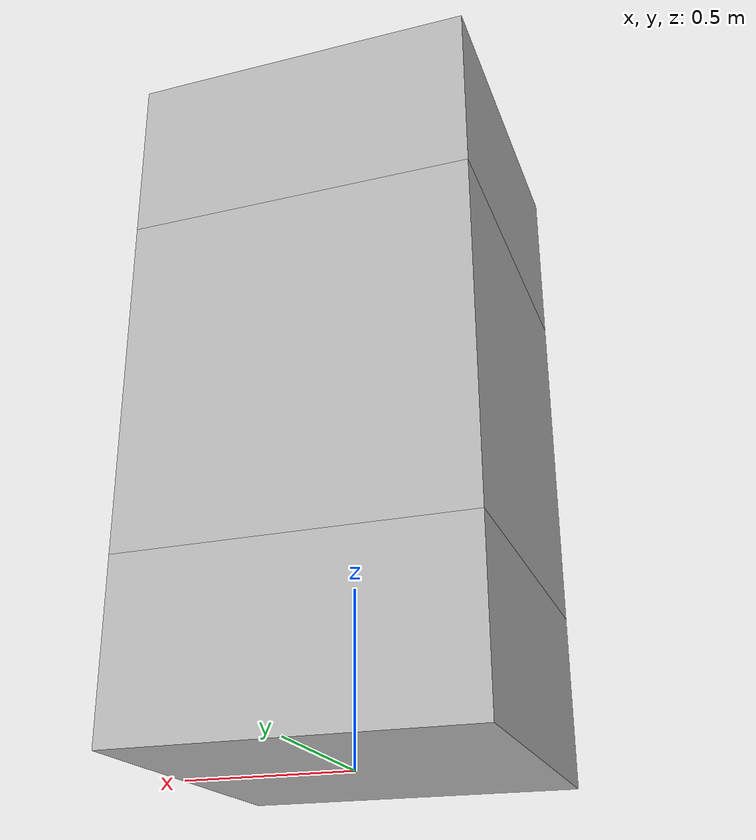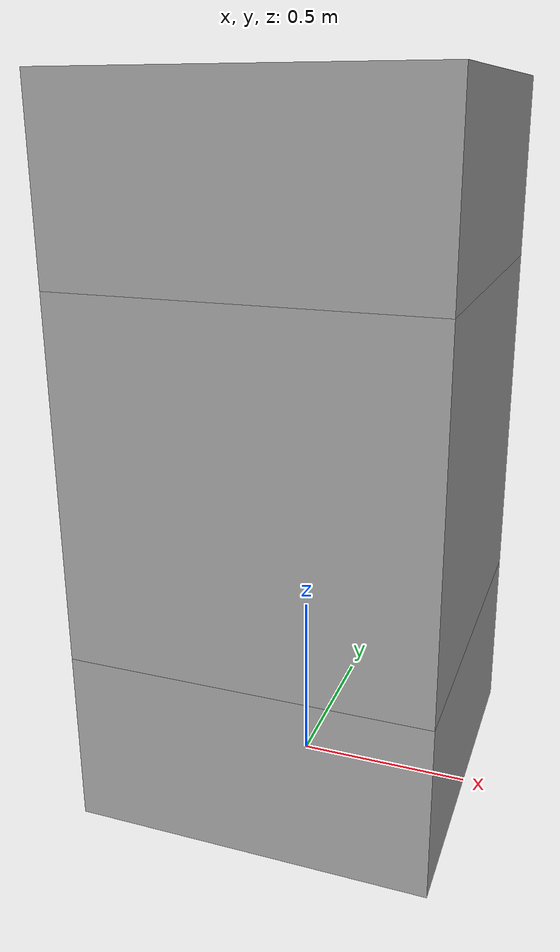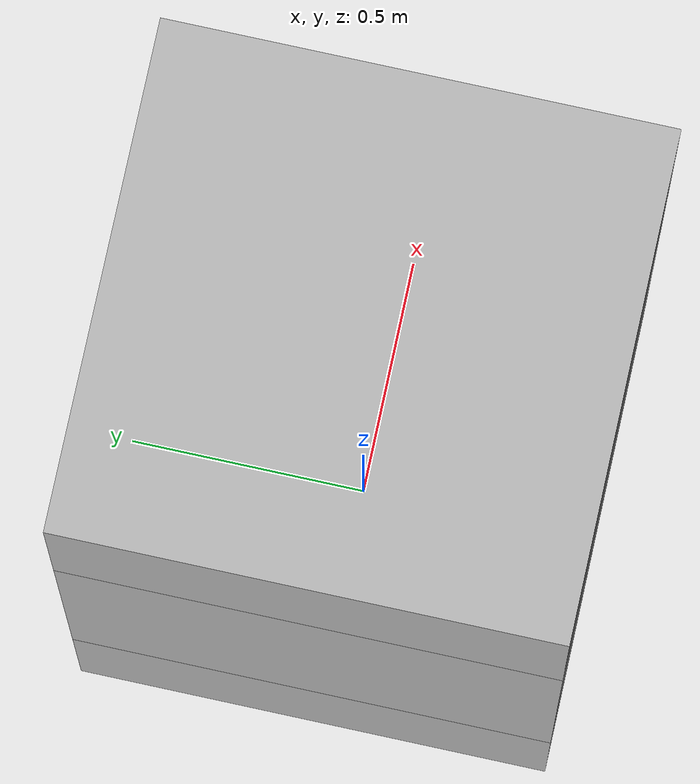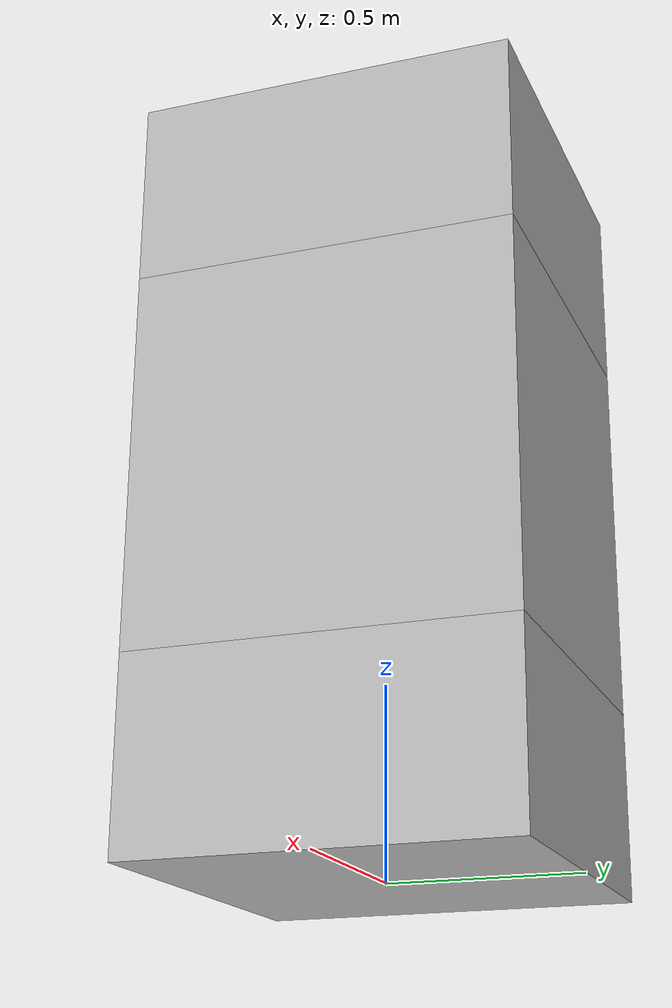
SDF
<?xml version="1.0" ?>
<sdf version="1.5">
  <model name="qr_location_marker">
    <static>true</static>
    <link name="link">
      <pose>0 0 1 0 0 0</pose>
      <collision name="collision">
        <geometry>
          <box>
            <size>1 1 2</size>
          </box>
        </geometry>
      </collision>

      <visual name="visual_bottom">
	<pose>0 0 -0.75 0 0 0</pose>
        <geometry>
          <box>
            <size>1 1 0.5</size>
          </box>
        </geometry>
        <material>
          <script>
            <uri>model://qr_location_marker/materials/scripts</uri>
            <uri>model://qr_location_marker/materials/textures</uri>
            <name>qr_location_marker/logo</name>
          </script>
        </material>
      </visual>

      <visual name="visual_top">
	<pose>0 0 0.75 0 0 0</pose>
        <geometry>
          <box>
            <size>1 1 0.5</size>
          </box>
        </geometry>
        <material>
          <script>
            <uri>model://qr_location_marker/materials/scripts</uri>
            <uri>model://qr_location_marker/materials/textures</uri>
            <name>qr_location_marker/logo</name>
          </script>
        </material>
      </visual>

      <visual name="visual_code">
	<pose>0 0 0 0 0 0</pose>
        <geometry>
          <box>
            <size>1 1 1</size>
          </box>
        </geometry>
        <material>
          <script>
            <uri>model://qr_location_marker/materials/scripts</uri>
            <uri>model://qr_location_marker/materials/textures</uri>
            <name>qr_location_marker/qr_code</name>
          </script>
        </material>
      </visual>

    </link>
  </model>
</sdf>
